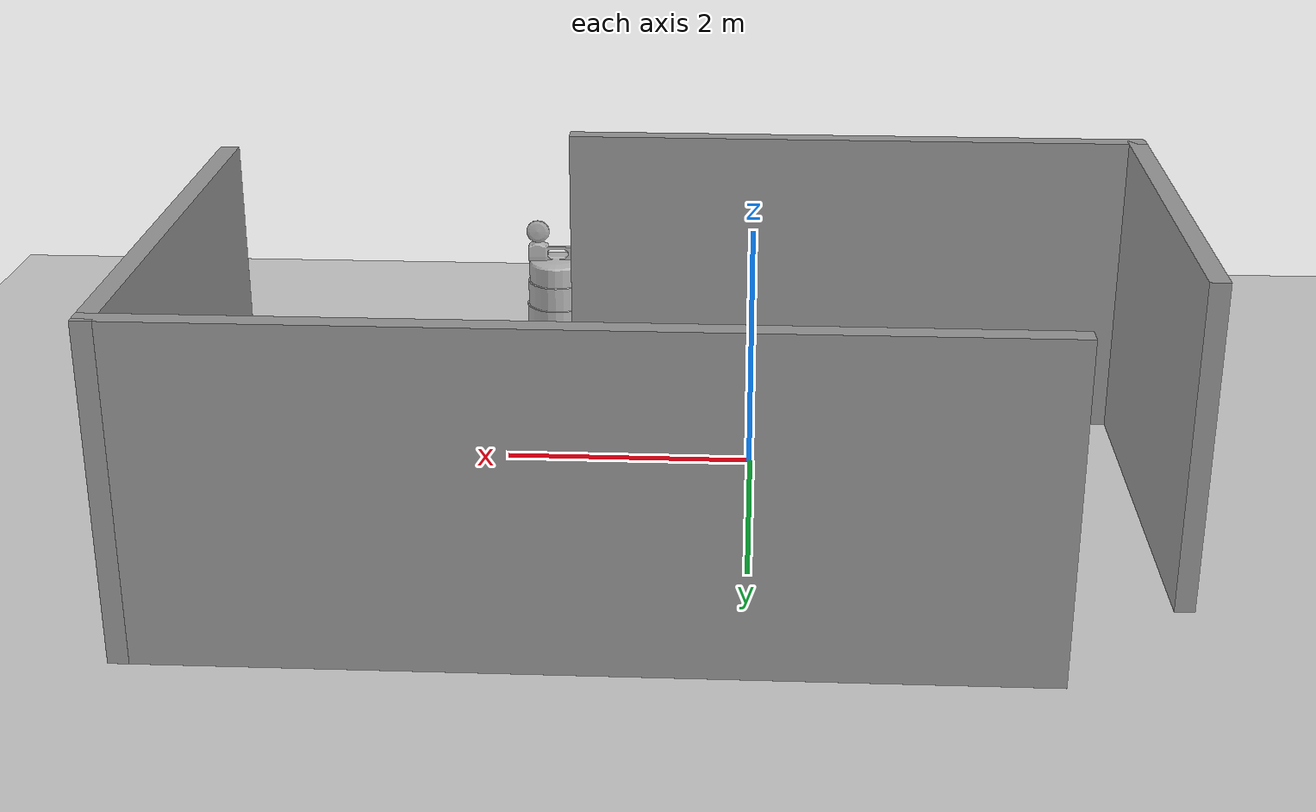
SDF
<sdf version="1.7">
 <world name="default">
  <light name="sun" type="directional">
   <pose>0 0 10 0 -0 0</pose>
   <diffuse>0.8 0.8 0.8 1</diffuse>
   <specular>0.2 0.2 0.2 1</specular>
   <attenuation>
    <range>1000</range>
    <constant>0.9</constant>
    <linear>0.01</linear>
    <quadratic>0.001</quadratic>
   </attenuation>
   <direction>-0.5 0.1 -0.9</direction>
   <spot><inner_angle>0</inner_angle><outer_angle>0</outer_angle><falloff>0</falloff></spot>
  </light>
  <model name="ground_plane">
   <static>1</static>
   <link name="link">
    <collision name="collision">
     <geometry><plane><normal>0 0 1</normal><size>100 100</size></plane></geometry>
     <surface><friction><ode><mu>100</mu><mu2>50</mu2></ode></friction></surface>
    </collision>
    <visual name="visual">
     <cast_shadows>0</cast_shadows>
     <geometry><plane><normal>0 0 1</normal><size>100 100</size></plane></geometry>
     <material>
      <script><uri>file://media/materials/scripts/gazebo.material</uri><name>Gazebo/Grey</name></script>
     </material>
    </visual>
   </link>
  </model>
  <gravity>0 0 -9.8</gravity>
  <magnetic_field>6e-06 2.3e-05 -4.2e-05</magnetic_field>
  <atmosphere type="adiabatic"/>
  <physics type="ode">
   <max_step_size>0.001</max_step_size>
   <real_time_factor>1</real_time_factor>
   <real_time_update_rate>1000</real_time_update_rate>
  </physics>
  <scene><ambient>0.4 0.4 0.4 1</ambient><background>0.7 0.7 0.7 1</background><shadows>1</shadows></scene>
  <audio><device>default</device></audio>
  <spherical_coordinates>
   <surface_model>EARTH_WGS84</surface_model>
   <latitude_deg>0</latitude_deg>
   <longitude_deg>0</longitude_deg>
   <elevation>0</elevation>
   <heading_deg>0</heading_deg>
  </spherical_coordinates>
  <model name="Model1">
   <pose>0.572075 1.22592 0 0 -0 0</pose>
   <link name="Wall_0">
    <collision name="Wall_0_Collision">
     <geometry><box><size>4.75 0.15 2.5</size></box></geometry>
     <pose>0 0 1.25 0 -0 0</pose>
    </collision>
    <visual name="Wall_0_Visual">
     <pose>0 0 1.25 0 -0 0</pose>
     <geometry><box><size>4.75 0.15 2.5</size></box></geometry>
     <material>
      <script><uri>file://media/materials/scripts/gazebo.material</uri><name>Gazebo/Grey</name></script>
      <ambient>1 1 1 1</ambient>
     </material>
     <meta><layer>0</layer></meta>
    </visual>
    <pose>-1.40207 -2.22592 0 0 -0 3.14159</pose>
   </link>
   <link name="Wall_1">
    <collision name="Wall_1_Collision">
     <geometry><box><size>3.5 0.15 2.5</size></box></geometry>
     <pose>0 0 1.25 0 -0 0</pose>
    </collision>
    <visual name="Wall_1_Visual">
     <pose>0 0 1.25 0 -0 0</pose>
     <geometry><box><size>3.5 0.15 2.5</size></box></geometry>
     <material>
      <script><uri>file://media/materials/scripts/gazebo.material</uri><name>Gazebo/Grey</name></script>
      <ambient>1 1 1 1</ambient>
     </material>
     <meta><layer>0</layer></meta>
    </visual>
    <pose>-3.70207 -0.550924 0 0 -0 1.5708</pose>
   </link>
   <link name="Wall_3">
    <collision name="Wall_3_Collision">
     <geometry><box><size>6.5 0.15 2.5</size></box></geometry>
     <pose>0 0 1.25 0 -0 0</pose>
    </collision>
    <visual name="Wall_3_Visual">
     <pose>0 0 1.25 0 -0 0</pose>
     <geometry><box><size>6.5 0.15 2.5</size></box></geometry>
     <material>
      <script><uri>file://media/materials/scripts/gazebo.material</uri><name>Gazebo/Grey</name></script>
      <ambient>1 1 1 1</ambient>
     </material>
     <meta><layer>0</layer></meta>
    </visual>
    <pose>0.527075 2.22592 0 0 -0 0</pose>
   </link>
   <link name="Wall_4">
    <collision name="Wall_4_Collision">
     <geometry><box><size>4 0.15 2.5</size></box></geometry>
     <pose>0 0 1.25 0 -0 0</pose>
    </collision>
    <visual name="Wall_4_Visual">
     <pose>0 0 1.25 0 -0 0</pose>
     <geometry><box><size>4 0.15 2.5</size></box></geometry>
     <material>
      <script><uri>file://media/materials/scripts/gazebo.material</uri><name>Gazebo/Grey</name></script>
      <ambient>1 1 1 1</ambient>
     </material>
     <meta><layer>0</layer></meta>
    </visual>
    <pose>3.70207 0.300924 0 0 -0 -1.5708</pose>
   </link>
   <static>1</static>
  </model>
  <model name="fire_hydrant">
   <static>1</static>
   <link name="link">
    <collision name="collision">
     <geometry><mesh><uri>model://fire_hydrant/meshes/fire_hydrant.dae</uri></mesh></geometry>
    </collision>
    <visual name="visual">
     <geometry><mesh><uri>model://fire_hydrant/meshes/fire_hydrant.dae</uri></mesh></geometry>
    </visual>
   </link>
   <pose>0.000304 2.21368 0 0 -0 0</pose>
  </model>
  <model name="Construction Barrel">
   <link name="link">
    <inertial>
     <pose>0 0 0.4 0 -0 0</pose>
     <mass>500</mass>
     <inertia><ixx>51.2096</ixx><iyy>51.2096</iyy><izz>25</izz><ixy>0</ixy><ixz>0</ixz><iyz>0</iyz></inertia>
    </inertial>
    <collision name="collision">
     <geometry><mesh><uri>model://construction_barrel/meshes/construction_barrel.dae</uri></mesh></geometry>
    </collision>
    <visual name="visual">
     <geometry><mesh><uri>model://construction_barrel/meshes/construction_barrel.dae</uri></mesh></geometry>
    </visual>
   </link>
   <pose>1.7201 -1.57866 -1e-06 -0 4e-06 -7e-06</pose>
  </model>
  <model name="Construction Cone">
   <link name="link">
    <collision name="collision">
     <geometry>
      <mesh><scale>10 10 10</scale><uri>model://construction_cone/meshes/construction_cone.dae</uri></mesh>
     </geometry>
    </collision>
    <visual name="visual">
     <geometry>
      <mesh><scale>10 10 10</scale><uri>model://construction_cone/meshes/construction_cone.dae</uri></mesh>
     </geometry>
    </visual>
    <inertial>
     <inertia><ixx>1</ixx><ixy>0</ixy><ixz>0</ixz><iyy>1</iyy><iyz>0</iyz><izz>1</izz></inertia>
     <mass>1</mass>
    </inertial>
   </link>
   <pose>4.62724 -0.754291 -0 0 -0 0</pose>
  </model>
 </world>
</sdf>
